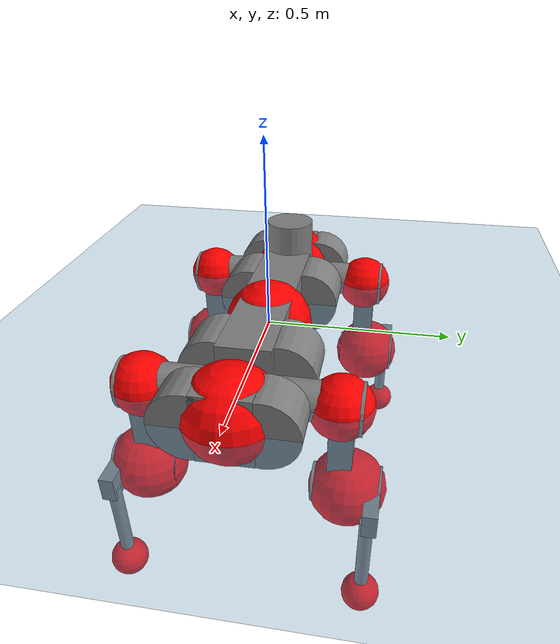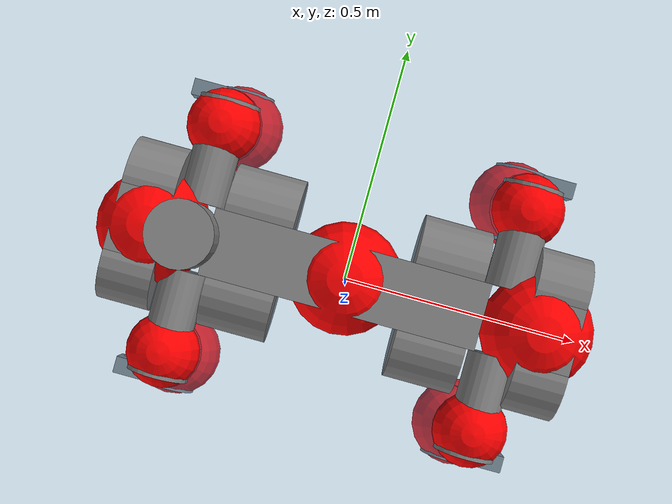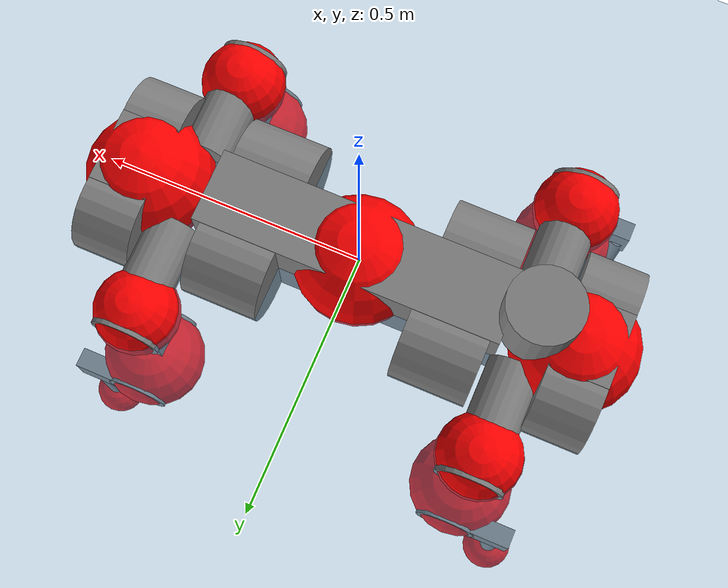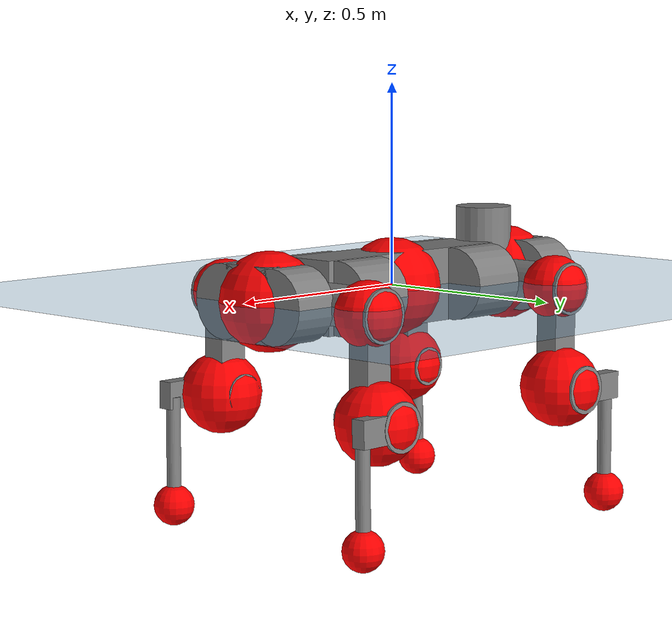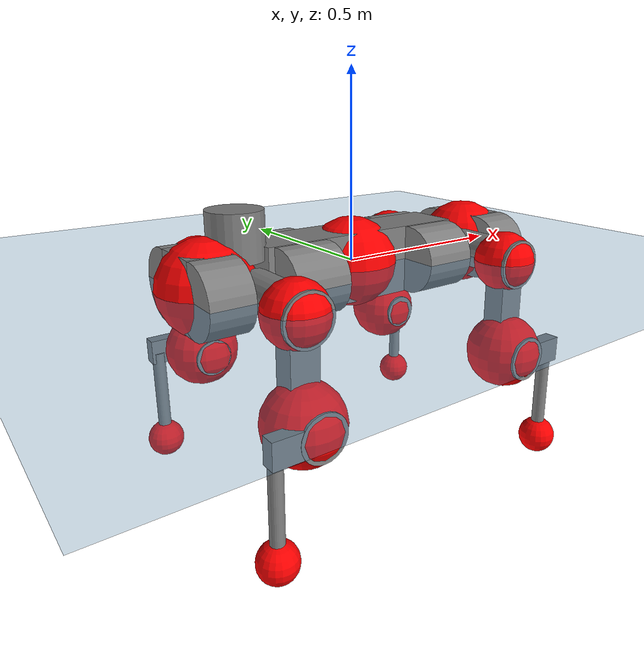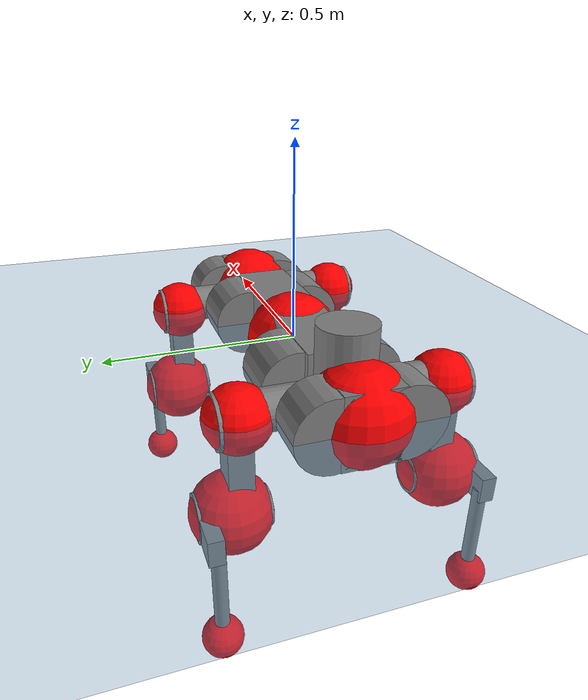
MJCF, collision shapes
<mujoco model="anymal_c">
  <compiler angle="radian" assetdir="assets" balanceinertia="true" inertiafromgeom="false"/>

  <option timestep="0.005" density="1.2" viscosity="2e-05"/>

  <size nkey="1"/>

  <visual>
    <quality shadowsize="8192"/>
    <map shadowclip="0.5"/>
  </visual>

  <default>
    <default class="/">
      <material specular="0" shininess="0.25"/>
      <geom contype="0" conaffinity="0" group="1" solref="-1000 -80"/>
      <site size="0.01 0.005 0.005" group="5"/>
      <general forcelimited="true" forcerange="-80 80" biastype="affine" gainprm="80" biasprm="0 -80 -2"/>
      <default class="anymal_c">
        <joint armature="0.01" damping="0.01" frictionloss="0.1"/>
        <default class="visual">
          <geom type="mesh" group="2"/>
          <default class="visual_zflip"/>
        </default>
        <default class="collision">
          <geom type="cylinder" group="3"/>
          <default class="foot">
            <geom size="0.03 0 0" type="sphere" condim="6" priority="1" friction="0.8 0.02 0.01" solimp="0.015 1 0.03"/>
          </default>
        </default>
      </default>
      <default class="reward_collision_sphere">
        <geom group="5" rgba="1 0 0 1"/>
      </default>
    </default>
  </default>

  <asset>
    <texture type="skybox" colorspace="auto" name="//unnamed_texture_0" builtin="gradient" rgb1="0.95 0.95 0.95" rgb2="0.95 0.95 0.95" width="100" height="600"/>
    <texture type="2d" colorspace="auto" name="texplane" builtin="checker" rgb1="0.345 0.575 0.748" rgb2="0.345 0.575 0.748" markrgb="1 1 1" width="512" height="512"/>
    <texture type="2d" colorspace="linear" name="base" file="base.png"/>
    <texture type="2d" colorspace="linear" name="top_shell" file="top_shell.png"/>
    <texture type="2d" colorspace="linear" name="bottom_shell" file="bottom_shell.png"/>
    <texture type="2d" colorspace="linear" name="remote" file="remote.png"/>
    <texture type="2d" colorspace="linear" name="hatch" file="hatch.png"/>
    <texture type="2d" colorspace="linear" name="handle" file="handle.png"/>
    <texture type="2d" colorspace="linear" name="face" file="face.png"/>
    <texture type="2d" colorspace="linear" name="battery" file="battery.png"/>
    <texture type="2d" colorspace="linear" name="lidar_cage" file="lidar_cage.png"/>
    <texture type="2d" colorspace="linear" name="depth_camera" file="depth_camera.png"/>
    <texture type="2d" colorspace="linear" name="wide_angle_camera" file="wide_angle_camera.png"/>
    <texture type="2d" colorspace="linear" name="lidar" file="lidar.png"/>
    <texture type="2d" colorspace="linear" name="drive" file="drive.png"/>
    <texture type="2d" colorspace="linear" name="hip_l" file="hip_l.png"/>
    <texture type="2d" colorspace="linear" name="shank_l" file="shank_l.png"/>
    <texture type="2d" colorspace="linear" name="foot" file="foot.png"/>
    <texture type="2d" colorspace="linear" name="thigh" file="thigh.png"/>
    <texture type="2d" colorspace="linear" name="shank_r" file="shank_r.png"/>
    <texture type="2d" colorspace="linear" name="hip_r" file="hip_r.png"/>
    <material name="MatPlane" class="/" texture="texplane" texuniform="true" texrepeat="2 2" specular="0.9" shininess="0.5"/>
    <material name="black_plastic" class="/" rgba="0.007 0.007 0.007 1"/>
    <material name="green" class="/" rgba="0.052 0.178 0.033 1"/>
    <material name="red" class="/" rgba="0.178 0.006 0.005 1"/>
    <material name="yellow" class="/" rgba="0.178 0.119 0.006 1"/>
    <material name="lwl" class="/" rgba="0.8 0.8 0.8 1"/>
    <material name="base" class="/" texture="base"/>
    <material name="top_shell" class="/" texture="top_shell"/>
    <material name="bottom_shell" class="/" texture="bottom_shell"/>
    <material name="hip_l" class="/" texture="hip_l"/>
    <material name="thigh" class="/" texture="thigh"/>
    <material name="shank_l" class="/" texture="shank_l"/>
    <material name="foot" class="/" texture="foot"/>
    <material name="hip_r" class="/" texture="hip_r"/>
    <material name="shank" class="/" texture="shank_r"/>
    <material name="hatch" class="/" texture="hatch"/>
    <material name="remote" class="/" texture="remote"/>
    <material name="handle" class="/" texture="handle"/>
    <material name="face" class="/" texture="face"/>
    <material name="depth_camera" class="/" texture="depth_camera"/>
    <material name="wide_angle_camera" class="/" texture="wide_angle_camera"/>
    <material name="battery" class="/" texture="battery"/>
    <material name="lidar_cage" class="/" texture="lidar_cage"/>
    <material name="lidar" class="/" texture="lidar"/>
    <material name="drive" class="/" texture="drive"/>
    <mesh name="base_0" class="/" file="base_0.obj"/>
    <mesh name="base_1" class="/" file="base_1.obj"/>
    <mesh name="base_2" class="/" file="base_2.obj"/>
    <mesh name="base_3" class="/" file="base_3.obj"/>
    <mesh name="base_4" class="/" file="base_4.obj"/>
    <mesh name="base_5" class="/" file="base_5.obj"/>
    <mesh name="top_shell" class="/" file="top_shell.obj"/>
    <mesh name="bottom_shell" class="/" file="bottom_shell.obj"/>
    <mesh name="remote" class="/" file="remote.obj"/>
    <mesh name="handle" class="/" file="handle.obj"/>
    <mesh name="face" class="/" file="face.obj"/>
    <mesh name="wide_angle_camera" class="/" file="wide_angle_camera.obj"/>
    <mesh name="depth_camera" class="/" file="depth_camera.obj"/>
    <mesh name="battery" class="/" file="battery.obj"/>
    <mesh name="lidar_cage" class="/" file="lidar_cage.obj"/>
    <mesh name="lidar" class="/" file="lidar.obj"/>
    <mesh name="drive" class="/" file="drive.obj"/>
    <mesh name="hip_l" class="/" file="hip_l.obj"/>
    <mesh name="thigh" class="/" file="thigh.obj"/>
    <mesh name="shank_l" class="/" file="shank_l.obj"/>
    <mesh name="foot" class="/" file="foot.obj"/>
    <mesh name="hip_r" class="/" file="hip_r.obj"/>
    <mesh name="hatch" class="/" file="hatch.obj"/>
    <mesh name="shank_r" class="/" file="shank_r.obj"/>
  </asset>

  <worldbody>
    <geom name="floor" class="/" size="100 100 0.125" type="plane" group="0" material="MatPlane"/>
    <light name="toplight_shadow" class="/" pos="0 0 5" dir="0.0990148 0.0990148 -0.990148" type="directional" ambient="0.04 0.04 0.04" diffuse="0.55 0.55 0.55" specular="0.12 0.12 0.12"/>
    <light name="toplight_fill" class="/" pos="0 0 5" dir="0.0990148 0.0990148 -0.990148" type="directional" castshadow="false" ambient="0.04 0.04 0.04" diffuse="0.3 0.3 0.3" specular="0.08 0.08 0.08"/>
    <body name="trunk" childclass="anymal_c" pos="0.000110112 0.000930415 -0.00208257" quat="1 0.000452355 3.23413e-05 0.000187406">
      <inertial pos="0.00206894 0.00536969 0.0404612" quat="0.500154 0.500008 0.49956 0.500278" mass="20.5236" diaginertia="0.513442 1.75893 0.113767"/>
      <joint name="//unnamed_joint_0" type="free" armature="0" damping="0" frictionloss="0"/>
      <geom name="//unnamed_geom_1" class="visual" material="green" mesh="base_0"/>
      <geom name="//unnamed_geom_2" class="visual" material="yellow" mesh="base_1"/>
      <geom name="//unnamed_geom_3" class="visual" material="red" mesh="base_2"/>
      <geom name="//unnamed_geom_4" class="visual" material="black_plastic" mesh="base_3"/>
      <geom name="//unnamed_geom_5" class="visual" material="lwl" mesh="base_4"/>
      <geom name="//unnamed_geom_6" class="visual" material="base" mesh="base_5"/>
      <geom name="trunk_1" class="collision" size="0.292675 0.0706456 0.0908301" type="box"/>
      <geom name="trunk_2" class="collision" size="0.0908301 0.0731687" pos="0.202839 0.0855316 0" quat="0.707107 0 0.707107 0"/>
      <geom name="trunk_3" class="collision" size="0.0908301 0.0731687" pos="-0.202839 0.0855316 0" quat="0.707107 0 0.707107 0"/>
      <geom name="trunk_4" class="collision" size="0.0908301 0.0731687" pos="0.202839 -0.0855316 0" quat="0.707107 0 0.707107 0"/>
      <geom name="trunk_5" class="collision" size="0.0908301 0.0731687" pos="-0.202839 -0.0855316 0" quat="0.707107 0 0.707107 0"/>
      <geom name="//unnamed_geom_12" class="visual" material="top_shell" mesh="top_shell"/>
      <geom name="//unnamed_geom_13" class="visual" material="bottom_shell" mesh="bottom_shell"/>
      <geom name="//unnamed_geom_14" class="visual" material="remote" mesh="remote"/>
      <geom name="//unnamed_geom_15" class="visual" material="handle" mesh="handle"/>
      <geom name="//unnamed_geom_16" class="visual" pos="0.38656 0 0" quat="1 0 0 0" material="face" mesh="face"/>
      <geom name="trunk_6" class="collision" size="0.0555073 0.0706456 0.0908301" pos="0.437852 0 0" type="box"/>
      <geom name="//unnamed_geom_18" class="collision" size="0.0908301 0.0555073" pos="0.437852 0.0855316 0" quat="0.707107 0 0.707107 0"/>
      <geom name="//unnamed_geom_19" class="collision" size="0.0908301 0.0555073" pos="0.437852 -0.0855316 0" quat="0.707107 0 0.707107 0"/>
      <geom name="//unnamed_geom_20" class="visual" pos="0.430529 0 -0.0250459" quat="0.965926 0 0.258819 0" material="depth_camera" mesh="depth_camera"/>
      <geom name="//unnamed_geom_21" class="visual" pos="0.47842 0 0.0130718" material="wide_angle_camera" mesh="wide_angle_camera"/>
      <geom name="//unnamed_geom_22" class="visual_zflip" pos="-0.38656 0 0" quat="0 0 0 1" material="face" mesh="face"/>
      <geom name="trunk_7" class="collision" size="0.0555073 0.0706456 0.0908301" pos="-0.437852 0 0" quat="0 0 0 1" type="box"/>
      <geom name="//unnamed_geom_24" class="collision" size="0.0908301 0.0555073" pos="-0.437852 -0.0855316 0" quat="0 -0.707107 0 0.707107"/>
      <geom name="//unnamed_geom_25" class="collision" size="0.0908301 0.0555073" pos="-0.437852 0.0855316 0" quat="0 -0.707107 0 0.707107"/>
      <geom name="//unnamed_geom_26" class="visual" pos="-0.430529 0 -0.0250459" quat="0 -0.258819 0 0.965926" material="depth_camera" mesh="depth_camera"/>
      <geom name="//unnamed_geom_27" class="visual_zflip" pos="-0.47842 0 0.0130718" quat="0 0 0 1" material="wide_angle_camera" mesh="wide_angle_camera"/>
      <geom name="//unnamed_geom_28" class="visual" material="battery" mesh="battery"/>
      <geom name="//unnamed_geom_29" class="visual" pos="0 0.0972185 0.0258178" quat="0.683013 -0.183013 0.183013 0.683013" material="depth_camera" mesh="depth_camera"/>
      <geom name="//unnamed_geom_30" class="visual" pos="0 -0.0972185 0.0258178" quat="0.683013 0.183013 0.183013 -0.683013" material="depth_camera" mesh="depth_camera"/>
      <geom name="//unnamed_geom_31" class="visual" pos="-0.339464 0 0.06418" quat="1 0 0 0" material="lidar_cage" mesh="lidar_cage"/>
      <geom name="trunk_8" class="collision" size="0.0706456 0.0605534" pos="-0.339464 0 0.116572"/>
      <geom name="//unnamed_geom_33" class="visual" pos="-0.339464 0.000113653 0.124169" quat="0.707107 0 0 -0.707107" material="lidar" mesh="lidar"/>
      <geom name="//unnamed_geom_34" class="visual" pos="0.279684 0.126952 6.01482e-09" quat="0.258819 0.965926 0 0" material="drive" mesh="drive"/>
      <geom name="//unnamed_geom_35" class="visual" pos="0.279684 -0.126952 -6.01482e-09" quat="0.258819 -0.965926 0 0" material="drive" mesh="drive"/>
      <geom name="//unnamed_geom_36" class="visual" pos="-0.279684 0.126952 -6.01482e-09" quat="0 0 0.965926 -0.258819" material="drive" mesh="drive"/>
      <geom name="//unnamed_geom_37" class="visual" pos="-0.279684 -0.126952 6.01482e-09" quat="0 0 -0.965926 -0.258819" material="drive" mesh="drive"/>
      <geom name="//unnamed_geom_38" class="visual" pos="0.108181 0 0.0637434" quat="1 0 0 0" material="hatch" mesh="hatch"/>
      <geom name="//unnamed_geom_39" class="reward_collision_sphere" size="0.121107"/>
      <geom name="//unnamed_geom_40" class="reward_collision_sphere" size="0.121107" pos="0.419667 0 0"/>
      <geom name="//unnamed_geom_41" class="reward_collision_sphere" size="0.121107" pos="-0.419667 0 0"/>
      <site name="imu" pos="0.222309 0.0164805 0.0465949" size="0.0100922"/>
      <camera name="track" pos="0 -2.44376 0" quat="0.707107 0.707107 0 0" mode="trackcom"/>
      <camera name="ego_camera" pos="0.419667 0 -0.0349279" quat="-0.5 -0.5 0.5 0.5"/>
      <body name="LF_HIP" pos="0.282358 0.126177 -0.000909297" quat="0.259483 0.965748 -0.000414911 5.47e-06">
        <inertial pos="0.0529562 -0.0158408 -0.00768826" quat="-0.139009 0.690592 -0.121498 0.699284" mass="2.95736" diaginertia="0.00418202 0.0136341 0.00169918"/>
        <joint name="LF_HAA" pos="0 0 0" axis="0.99994 -0.00862361 0.00673534" range="-0.728278 0.436576" armature="0.00978376" damping="0.0152891" frictionloss="0.103279"/>
        <geom name="//unnamed_geom_42" class="visual" pos="0 0.000353825 -5.81154e-05" quat="0.258819 -0.965926 0 0" material="hip_l" mesh="hip_l"/>
        <geom name="//unnamed_geom_43" class="visual" pos="0.0558623 -0.0713741 -0.0386288" quat="0.183013 -0.683013 0.683013 0.183013" material="drive" mesh="drive"/>
        <geom name="//unnamed_geom_44" class="collision" size="0.0504612 0.0706456" pos="0.0558623 -0.0146134 -0.00602942" quat="-0.353553 -0.612372 0.612372 -0.353553"/>
        <body name="LF_THIGH" pos="0.0532677 -0.0884993 -0.0335346" quat="0.185043 -0.682916 0.6831 0.180993">
          <inertial pos="0.02923 -0.00574208 -0.216949" quat="0.992594 -0.0110536 -0.0841571 0.0869011" mass="3.15169" diaginertia="0.0221592 0.0755914 0.00209978"/>
          <joint name="LF_HFE" pos="0 0 0" axis="0.999984 -0.00562062 0.000411421" stiffness="0.00337342" range="-3.11898 3.22821" armature="0.00742354" damping="0.0234703" frictionloss="0.100154"/>
          <geom name="//unnamed_geom_45" class="visual" pos="-0.00575569 -9.06962e-06 0" quat="0.707107 0 0 -0.707107" material="thigh" mesh="thigh"/>
          <geom name="//unnamed_geom_46" class="collision" size="0.0655995 0.0403689" pos="0.0373037 0 0" quat="0.5 0.5 -0.5 -0.5"/>
          <geom name="//unnamed_geom_47" class="collision" size="0.0378459 0.0302767 0.142617" pos="0.0279778 0 -0.123395" quat="0.707107 0 0 -0.707107" type="box"/>
          <geom name="//unnamed_geom_48" class="visual" pos="0.093539 0 -0.248861" quat="1 0 0 0" material="drive" mesh="drive"/>
          <geom name="//unnamed_geom_49" class="collision" size="0.0504612 0.0706456" pos="0.0282575 0 -0.248861" quat="0.707107 0 0.707107 0"/>
          <geom name="//unnamed_geom_50" class="reward_collision_sphere" size="0.0807378" pos="0.0233148 0 0"/>
          <body name="LF_SHANK" pos="0.0953746 0.00102968 -0.253606" quat="0.999999 0.000886767 -0.000611553 5.53953e-05">
            <inertial pos="0.00879764 -0.0743017 -0.0679398" quat="0.99286 -0.117271 0.00642668 -0.0208458" mass="0.62326" diaginertia="0.00720198 0.0239438 0.00055815"/>
            <joint name="LF_KFE" pos="0 0 0" axis="0.99998 -0.00413157 -0.00468717" range="-3.25683 3.09292" armature="0.00997679" damping="0.0224579" frictionloss="0.110863"/>
            <geom name="//unnamed_geom_51" class="visual" pos="-0.0018768 -0.0100072 0" quat="0.707107 0 0 -0.707107" material="shank_l" mesh="shank_l"/>
            <geom name="LF_kfe_act" class="collision" size="0.0605534 0.0201845" pos="0.0186518 0 0" quat="0.5 0.5 -0.5 -0.5"/>
            <geom name="//unnamed_geom_53" class="collision" size="0.0580293 0.0340613 0.0191752" pos="0.0186518 -0.0702569 0" quat="0.5 0.5 -0.5 -0.5" type="box"/>
            <geom name="//unnamed_geom_54" class="visual" pos="0.0121708 -0.110689 -0.295114" quat="0.382683 0 0 -0.92388" material="foot" mesh="foot"/>
            <geom name="LF_calf" class="collision" size="0.0176614 0.142555" pos="0.0121703 -0.107464 -0.147557" quat="0.707107 0 0 -0.707107"/>
            <geom name="LF_foot" class="foot" size="0.0318662" pos="0.0121703 -0.107464 -0.275467" quat="0.707107 0 0 -0.707107"/>
            <geom name="//unnamed_geom_57" class="reward_collision_sphere" size="0.100922" pos="-0.0466296 0 0"/>
            <geom name="//unnamed_geom_58" class="reward_collision_sphere" size="0.0504612" pos="0.0121703 -0.107464 -0.275467"/>
            <site name="LF_foot" class="foot" pos="0.0121703 -0.107464 -0.275467" quat="0.707107 0 0 -0.707107" size="0.0100922"/>
          </body>
        </body>
      </body>
      <body name="RF_HIP" pos="0.285376 -0.127693 0.00926567" quat="0.257899 -0.966172 -8.77329e-05 -0.00068723">
        <inertial pos="0.0507423 0.0205635 -0.008315" quat="0.150269 0.682061 0.115853 0.706251" mass="2.80063" diaginertia="0.00420434 0.0133731 0.00170918"/>
        <joint name="RF_HAA" pos="0 0 0" axis="0.999999 -0.00118057 -0.000698024" stiffness="0.0299597" range="-0.459628 0.655853" armature="0.00953789" damping="0.0218962" frictionloss="0.112163"/>
        <geom name="//unnamed_geom_59" class="visual" pos="0 -0.000353822 -5.81153e-05" quat="0.258819 0.965926 0 0" material="hip_r" mesh="hip_r"/>
        <geom name="//unnamed_geom_60" class="visual" pos="0.0558623 0.0713741 -0.0386288" quat="0.183013 0.683013 0.683013 -0.183013" material="drive" mesh="drive"/>
        <geom name="//unnamed_geom_61" class="collision" size="0.0504612 0.0706456" pos="0.0558623 0.0146134 -0.00602942" quat="-0.353553 0.612372 0.612372 0.353553"/>
        <body name="RF_THIGH" pos="0.054579 0.0829507 -0.0324493" quat="0.183144 0.683461 0.682471 -0.183227">
          <inertial pos="0.0294149 0.000658757 -0.218888" quat="0.992723 0.00322388 -0.0785798 0.0911927" mass="3.26671" diaginertia="0.0217499 0.0822427 0.00214565"/>
          <joint name="RF_HFE" pos="0 0 0" axis="0.999916 0.00291865 -0.0125942" range="-3.15032 3.17616" armature="0.0118573" damping="0" frictionloss="0.103131"/>
          <geom name="//unnamed_geom_62" class="visual" pos="-0.00575569 -9.06962e-06 0" quat="0.707107 0 0 -0.707107" material="thigh" mesh="thigh"/>
          <geom name="//unnamed_geom_63" class="collision" size="0.0655995 0.0403689" pos="0.0373037 0 0" quat="0.5 0.5 0.5 0.5"/>
          <geom name="//unnamed_geom_64" class="collision" size="0.0378459 0.0302767 0.142617" pos="0.0279778 0 -0.123395" quat="0.707107 0 0 0.707107" type="box"/>
          <geom name="//unnamed_geom_65" class="visual" pos="0.093539 0 -0.248861" quat="1 0 0 0" material="drive" mesh="drive"/>
          <geom name="//unnamed_geom_66" class="collision" size="0.0504612 0.0706456" pos="0.0282575 0 -0.248861" quat="0.707107 0 0.707107 0"/>
          <geom name="//unnamed_geom_67" class="reward_collision_sphere" size="0.0807378" pos="0.0233148 0 0"/>
          <body name="RF_SHANK" pos="0.089689 -0.00188334 -0.253154" quat="0.999999 -0.000977999 -0.000469379 0.000481958">
            <inertial pos="0.00558941 0.0740351 -0.0691639" quat="0.993073 0.115526 0.00392054 0.0210783" mass="0.560422" diaginertia="0.00653123 0.0229845 0.000529768"/>
            <joint name="RF_KFE" pos="0 0 0" axis="0.999982 0.00571853 0.00188049" range="-3.09723 3.18301" armature="0.00900387" damping="0.0307651" frictionloss="0.0922399"/>
            <geom name="//unnamed_geom_68" class="visual" pos="-0.00187679 0.0100072 0" quat="0.707107 0 0 0.707107" material="shank" mesh="shank_r"/>
            <geom name="RF_kfe_act" class="collision" size="0.0605534 0.0201845" pos="0.0186518 0 0" quat="0.5 0.5 0.5 0.5"/>
            <geom name="//unnamed_geom_70" class="collision" size="0.0580293 0.0340613 0.0191752" pos="0.0186518 0.0702569 0" quat="0.5 0.5 0.5 0.5" type="box"/>
            <geom name="//unnamed_geom_71" class="visual" pos="0.0121699 0.110689 -0.295114" quat="0.382683 0 0 0.92388" material="foot" mesh="foot"/>
            <geom name="RF_calf" class="collision" size="0.0176614 0.142555" pos="0.0121703 0.107464 -0.147557" quat="0.707107 0 0 0.707107"/>
            <geom name="RF_foot" class="foot" size="0.0368311" pos="0.0121703 0.107464 -0.275467" quat="0.707107 0 0 0.707107"/>
            <geom name="//unnamed_geom_74" class="reward_collision_sphere" size="0.100922" pos="-0.0466296 0 0"/>
            <geom name="//unnamed_geom_75" class="reward_collision_sphere" size="0.0504612" pos="0.0121703 0.107464 -0.275467"/>
            <site name="RF_foot" class="foot" pos="0.0121703 0.107464 -0.275467" quat="0.707107 0 0 0.707107" size="0.0100922"/>
          </body>
        </body>
      </body>
      <body name="LH_HIP" pos="-0.279335 0.128006 -0.00115313" quat="0.000459551 -5.13382e-05 0.966192 -0.257825">
        <inertial pos="0.0554134 0.0159259 -0.00764724" quat="0.133023 0.673597 0.120155 0.717032" mass="3.01251" diaginertia="0.00392896 0.0130265 0.00163926"/>
        <joint name="LH_HAA" pos="0 0 0" axis="0.999982 0.00098896 0.00590855" range="-0.552182 0.685533" armature="0.00888062" damping="0.00329703" frictionloss="0.0905064"/>
        <geom name="//unnamed_geom_76" class="visual" pos="0 -0.000353822 -5.81153e-05" quat="-0.258819 -0.965926 0 0" material="hip_r" mesh="hip_r"/>
        <geom name="//unnamed_geom_77" class="visual" pos="0.0558623 0.0713741 -0.0386288" quat="0.183013 0.683013 0.683013 -0.183013" material="drive" mesh="drive"/>
        <geom name="//unnamed_geom_78" class="collision" size="0.0504612 0.0706456" pos="0.0558623 0.0146134 -0.00602942" quat="-0.353553 0.612372 0.612372 0.353553"/>
        <body name="LH_THIGH" pos="0.055311 0.0875066 -0.0365649" quat="0.18329 0.68415 0.682273 -0.181237">
          <inertial pos="0.0296128 -0.0064397 -0.212536" quat="0.993463 -0.0127154 -0.0771099 0.0832085" mass="3.36806" diaginertia="0.021296 0.0815564 0.00202864"/>
          <joint name="LH_HFE" pos="0 0 0" axis="0.999554 0.0283914 -0.00924448" range="-3.18865 3.12013" armature="0.00971872" damping="0" frictionloss="0.100294"/>
          <geom name="//unnamed_geom_79" class="visual" pos="-0.00575569 -9.06962e-06 0" quat="0.707107 0 0 -0.707107" material="thigh" mesh="thigh"/>
          <geom name="//unnamed_geom_80" class="collision" size="0.0655995 0.0403689" pos="0.0373037 0 0" quat="0.5 0.5 -0.5 -0.5"/>
          <geom name="//unnamed_geom_81" class="collision" size="0.0378459 0.0302767 0.142617" pos="0.0279778 0 -0.123395" quat="0.707107 0 0 -0.707107" type="box"/>
          <geom name="//unnamed_geom_82" class="visual" pos="0.093539 0 -0.248861" quat="1 0 0 0" material="drive" mesh="drive"/>
          <geom name="//unnamed_geom_83" class="collision" size="0.0504612 0.0706456" pos="0.0282575 0 -0.248861" quat="0.707107 0 0.707107 0"/>
          <geom name="//unnamed_geom_84" class="reward_collision_sphere" size="0.0807378" pos="0.0233148 0 0"/>
          <body name="LH_SHANK" pos="0.0927519 -0.00391386 -0.249728" quat="1 -0.000143512 -0.000111566 4.28851e-05">
            <inertial pos="0.00459202 0.0720087 -0.0723287" quat="0.993478 0.110341 -0.0043117 0.0284033" mass="0.606345" diaginertia="0.00751633 0.0264445 0.000601014"/>
            <joint name="LH_KFE" pos="0 0 0" axis="1 -0.000491049 0.00013405" range="-3.24863 3.12383" armature="0.0071468" damping="5.28815e-05" frictionloss="0.104235"/>
            <geom name="//unnamed_geom_85" class="visual" pos="-0.00187679 0.0100072 0" quat="-0.707107 0 0 -0.707107" material="shank" mesh="shank_r"/>
            <geom name="LH_kfe_act" class="collision" size="0.0605534 0.0201845" pos="0.0186518 0 0" quat="0.5 0.5 -0.5 -0.5"/>
            <geom name="//unnamed_geom_87" class="collision" size="0.0580293 0.0340613 0.0191752" pos="0.0186518 0.0702569 0" quat="0.5 0.5 -0.5 -0.5" type="box"/>
            <geom name="//unnamed_geom_88" class="visual" pos="0.0121699 0.110689 -0.295114" quat="-0.382683 0 0 -0.92388" material="foot" mesh="foot"/>
            <geom name="LH_calf" class="collision" size="0.0176614 0.142555" pos="0.0121703 0.107464 -0.147557" quat="0.707107 0 0 -0.707107"/>
            <geom name="LH_foot" class="foot" size="0.0345015" pos="0.0121703 0.107464 -0.275467" quat="0.707107 0 0 -0.707107"/>
            <geom name="//unnamed_geom_91" class="reward_collision_sphere" size="0.100922" pos="-0.0466296 0 0"/>
            <geom name="//unnamed_geom_92" class="reward_collision_sphere" size="0.0504612" pos="0.0121703 0.107464 -0.275467"/>
            <site name="LH_foot" class="foot" pos="0.0121703 0.107464 -0.275467" quat="0.707107 0 0 -0.707107" size="0.0100922"/>
          </body>
        </body>
      </body>
      <body name="RH_HIP" pos="-0.274224 -0.128872 0.000227533" quat="0.00261709 -0.00160447 -0.965761 -0.259415">
        <inertial pos="0.0540542 -0.0208452 -0.00997401" quat="-0.127471 0.710029 -0.137141 0.678824" mass="2.84285" diaginertia="0.00411818 0.0136338 0.00152345"/>
        <joint name="RH_HAA" pos="0 0 0" axis="0.999942 0.00447355 0.00977746" range="-0.773809 0.469236" armature="0.00791438" damping="0.00742484" frictionloss="0.0990986"/>
        <geom name="//unnamed_geom_93" class="visual" pos="0 0.000353825 -5.81154e-05" quat="-0.258819 0.965926 0 0" material="hip_l" mesh="hip_l"/>
        <geom name="//unnamed_geom_94" class="visual" pos="0.0558623 -0.0713741 -0.0386288" quat="-0.183013 0.683013 -0.683013 -0.183013" material="drive" mesh="drive"/>
        <geom name="//unnamed_geom_95" class="collision" size="0.0504612 0.0706456" pos="0.0558623 -0.0146134 -0.00602942" quat="0.353553 0.612372 -0.612372 0.353553"/>
        <body name="RH_THIGH" pos="0.0569213 -0.091144 -0.0380524" quat="-0.182825 0.683342 -0.682908 -0.182358">
          <inertial pos="0.0283246 0.00187727 -0.215791" quat="0.992439 -0.0142917 -0.0804291 0.0916022" mass="3.33846" diaginertia="0.0214242 0.0815996 0.00221021"/>
          <joint name="RH_HFE" pos="0 0 0" axis="0.999999 -0.000543195 -0.000854803" range="-3.11217 3.02088" armature="0.0128311" damping="0" frictionloss="0.0932658"/>
          <geom name="//unnamed_geom_96" class="visual" pos="-0.00575569 -9.06962e-06 0" quat="0.707107 0 0 -0.707107" material="thigh" mesh="thigh"/>
          <geom name="//unnamed_geom_97" class="collision" size="0.0655995 0.0403689" pos="0.0373037 0 0" quat="0.5 0.5 0.5 0.5"/>
          <geom name="//unnamed_geom_98" class="collision" size="0.0378459 0.0302767 0.142617" pos="0.0279778 0 -0.123395" quat="0.707107 0 0 0.707107" type="box"/>
          <geom name="//unnamed_geom_99" class="visual" pos="0.093539 0 -0.248861" quat="1 0 0 0" material="drive" mesh="drive"/>
          <geom name="//unnamed_geom_100" class="collision" size="0.0504612 0.0706456" pos="0.0282575 0 -0.248861" quat="0.707107 0 0.707107 0"/>
          <geom name="//unnamed_geom_101" class="reward_collision_sphere" size="0.0807378" pos="0.0233148 0 0"/>
          <body name="RH_SHANK" pos="0.0936737 -0.000354372 -0.24826" quat="1 -0.000580213 0.000288979 -0.00020519">
            <inertial pos="0.00509472 -0.0720052 -0.0696105" quat="0.993087 -0.114416 -0.000185214 -0.026213" mass="0.59413" diaginertia="0.00732118 0.0252392 0.000551274"/>
            <joint name="RH_KFE" pos="0 0 0" axis="0.999953 0.00536928 0.0080309" stiffness="0.00894815" range="-3.2124 3.1526" armature="0.00930829" damping="0" frictionloss="0.102042"/>
            <geom name="//unnamed_geom_102" class="visual" pos="-0.0018768 -0.0100072 0" quat="0.707107 0 0 -0.707107" material="shank_l" mesh="shank_l"/>
            <geom name="RH_kfe_act" class="collision" size="0.0605534 0.0201845" pos="0.0186518 0 0" quat="0.5 0.5 0.5 0.5"/>
            <geom name="//unnamed_geom_104" class="collision" size="0.0580293 0.0340613 0.0191752" pos="0.0186518 -0.0702569 0" quat="0.5 0.5 0.5 0.5" type="box"/>
            <geom name="//unnamed_geom_105" class="visual" pos="0.0121708 -0.110689 -0.295114" quat="0.382683 0 0 -0.92388" material="foot" mesh="foot"/>
            <geom name="RH_calf" class="collision" size="0.0176614 0.142555" pos="0.0121703 -0.107464 -0.147557" quat="0.707107 0 0 0.707107"/>
            <geom name="RH_foot" class="foot" size="0.0231265" pos="0.0121703 -0.107464 -0.275467" quat="0.707107 0 0 0.707107"/>
            <geom name="//unnamed_geom_108" class="reward_collision_sphere" size="0.100922" pos="-0.0466296 0 0"/>
            <geom name="//unnamed_geom_109" class="reward_collision_sphere" size="0.0504612" pos="0.0121703 -0.107464 -0.275467"/>
            <site name="RH_foot" class="foot" pos="0.0121703 -0.107464 -0.275467" quat="0.707107 0 0 0.707107" size="0.0100922"/>
          </body>
        </body>
      </body>
    </body>
  </worldbody>

  <contact>
    <pair class="/" geom1="floor" geom2="LF_foot" name="//unnamed_contact_0"/>
    <pair class="/" geom1="floor" geom2="RF_foot" name="//unnamed_contact_1"/>
    <pair class="/" geom1="floor" geom2="LH_foot" name="//unnamed_contact_2"/>
    <pair class="/" geom1="floor" geom2="RH_foot" name="//unnamed_contact_3"/>
  </contact>

  <actuator>
    <general name="LF_HAA" class="/" joint="LF_HAA" forcerange="-83.9047 83.9047" gainprm="81.5387" biasprm="0 -81.5387 -2.29789"/>
    <general name="LF_HFE" class="/" joint="LF_HFE" forcerange="-80.3007 80.3007" gainprm="81.5387" biasprm="0 -81.5387 -2.29789"/>
    <general name="LF_KFE" class="/" joint="LF_KFE" forcerange="-86.299 86.299" gainprm="81.5387" biasprm="0 -81.5387 -2.29789"/>
    <general name="RF_HAA" class="/" joint="RF_HAA" forcerange="-78.9564 78.9564" gainprm="81.5387" biasprm="0 -81.5387 -2.29789"/>
    <general name="RF_HFE" class="/" joint="RF_HFE" forcerange="-84.6095 84.6095" gainprm="81.5387" biasprm="0 -81.5387 -2.29789"/>
    <general name="RF_KFE" class="/" joint="RF_KFE" forcerange="-85.8611 85.8611" gainprm="81.5387" biasprm="0 -81.5387 -2.29789"/>
    <general name="LH_HAA" class="/" joint="LH_HAA" forcerange="-75.3827 75.3827" gainprm="81.5387" biasprm="0 -81.5387 -2.29789"/>
    <general name="LH_HFE" class="/" joint="LH_HFE" forcerange="-82.732 82.732" gainprm="81.5387" biasprm="0 -81.5387 -2.29789"/>
    <general name="LH_KFE" class="/" joint="LH_KFE" forcerange="-88.6246 88.6246" gainprm="81.5387" biasprm="0 -81.5387 -2.29789"/>
    <general name="RH_HAA" class="/" joint="RH_HAA" forcerange="-78.4872 78.4872" gainprm="81.5387" biasprm="0 -81.5387 -2.29789"/>
    <general name="RH_HFE" class="/" joint="RH_HFE" forcerange="-86.3193 86.3193" gainprm="81.5387" biasprm="0 -81.5387 -2.29789"/>
    <general name="RH_KFE" class="/" joint="RH_KFE" forcerange="-69.0378 69.0378" gainprm="81.5387" biasprm="0 -81.5387 -2.29789"/>
  </actuator>

  <sensor>
    <gyro site="imu" name="imu_angular_velocity"/>
    <velocimeter site="imu" name="imu_linear_velocity"/>
    <framelinvel objtype="site" objname="LF_foot" name="LF_foot_global_linear_velocity"/>
    <framelinvel objtype="site" objname="RF_foot" name="RF_foot_global_linear_velocity"/>
    <framelinvel objtype="site" objname="LH_foot" name="LH_foot_global_linear_velocity"/>
    <framelinvel objtype="site" objname="RH_foot" name="RH_foot_global_linear_velocity"/>
  </sensor>

  <keyframe>
    <key name="home" qpos="0 0 0.55 1 0 0 0 0 0.4 -0.8 0 -0.4 0.8 0 -0.4 0.8 0 0.4 -0.8"/>
  </keyframe>
</mujoco>
